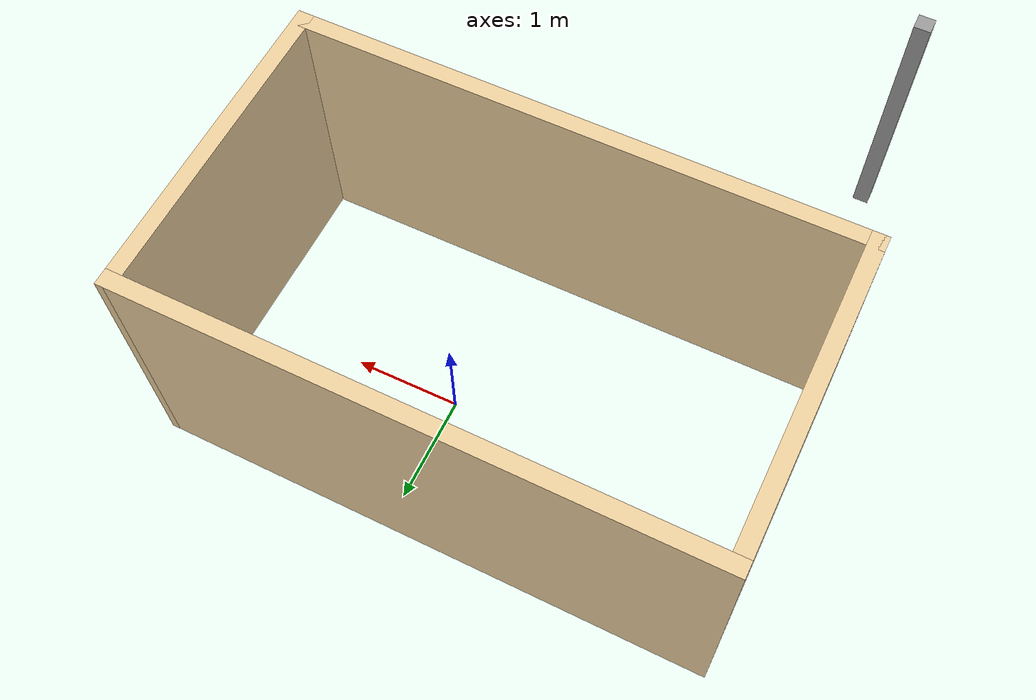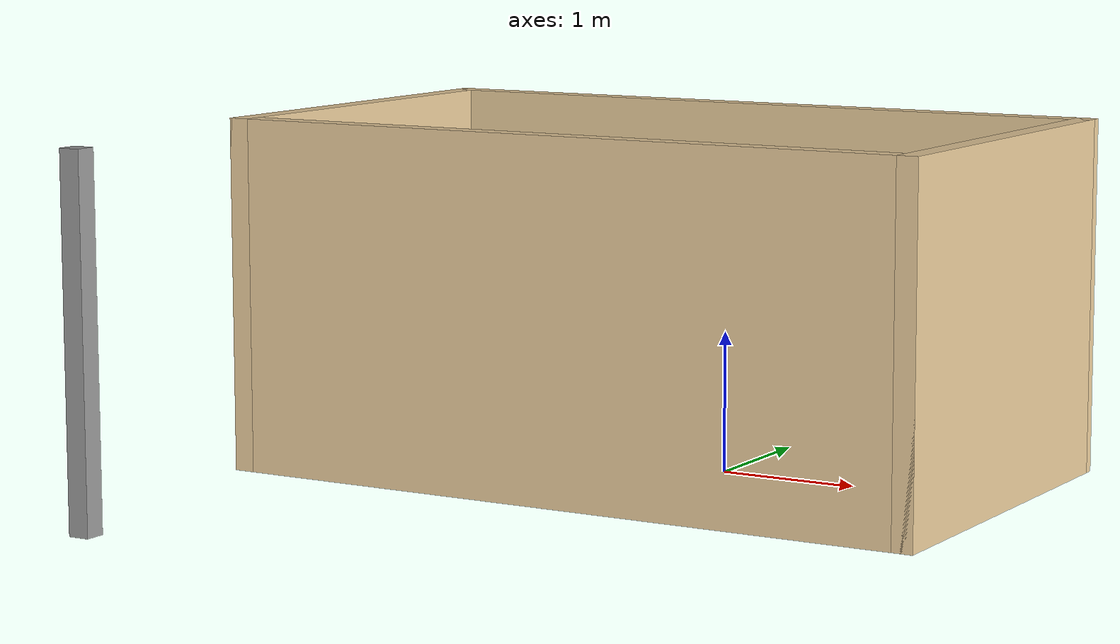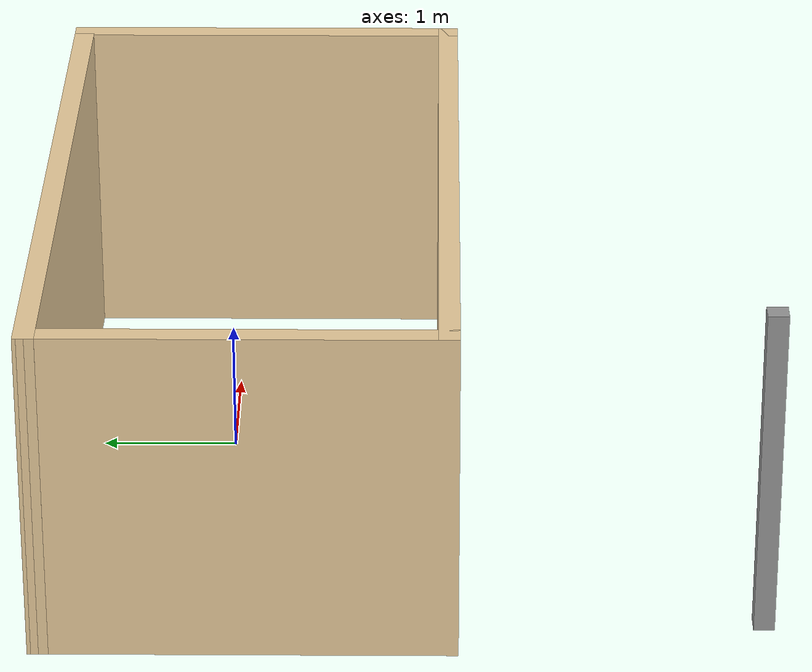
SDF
<?xml version='1.0'?>
<sdf version='1.7'>
  <model name='walker_world'>
    <pose>-0.398093 -1.29893 0 0 -0 0</pose>
    <link name='Wall_10'>
      <collision name='Wall_10_Collision'>
        <geometry>
          <box>
            <size>3 0.15 2.5</size>
          </box>
        </geometry>
        <pose>0 0 1.25 0 -0 0</pose>
      </collision>
      <visual name='Wall_10_Visual'>
        <pose>0 0 1.25 0 -0 0</pose>
        <geometry>
          <box>
            <size>3 0.15 2.5</size>
          </box>
        </geometry>
        <material>
          <script>
            <uri>file://media/materials/scripts/gazebo.material</uri>
            <name>Gazebo/Grey</name>
          </script>
          <ambient>0.921569 0.807843 0.615686 1</ambient>
        </material>
        <meta>
          <layer>0</layer>
        </meta>
      </visual>
      <pose>2.55 1.10701 0 0 -0 1.5708</pose>
    </link>
    <link name='Wall_11'>
      <collision name='Wall_11_Collision'>
        <geometry>
          <box>
            <size>5.25 0.15 2.5</size>
          </box>
        </geometry>
        <pose>0 0 1.25 0 -0 0</pose>
      </collision>
      <visual name='Wall_11_Visual'>
        <pose>0 0 1.25 0 -0 0</pose>
        <geometry>
          <box>
            <size>5.25 0.15 2.5</size>
          </box>
        </geometry>
        <material>
          <script>
            <uri>file://media/materials/scripts/gazebo.material</uri>
            <name>Gazebo/Grey</name>
          </script>
          <ambient>0.921569 0.807843 0.615686 1</ambient>
        </material>
        <meta>
          <layer>0</layer>
        </meta>
      </visual>
      <pose>-0 2.54523 0 0 -0 3.13641</pose>
    </link>
    <link name='Wall_3'>
      <collision name='Wall_3_Collision'>
        <geometry>
          <box>
            <size>0.15 0.15 2.5</size>
          </box>
        </geometry>
        <pose>0 0 1.25 0 -0 0</pose>
      </collision>
      <visual name='Wall_3_Visual'>
        <pose>0 0 1.25 0 -0 0</pose>
        <geometry>
          <box>
            <size>0.15 0.15 2.5</size>
          </box>
        </geometry>
        <material>
          <script>
            <uri>file://media/materials/scripts/gazebo.material</uri>
            <name>Gazebo/Grey</name>
          </script>
          <ambient>1 1 1 1</ambient>
        </material>
        <meta>
          <layer>0</layer>
        </meta>
      </visual>
      <pose>-2.19201 -2.55885 0 0 -0 0</pose>
    </link>
    <link name='Wall_8'>
      <collision name='Wall_8_Collision'>
        <geometry>
          <box>
            <size>3 0.15 2.5</size>
          </box>
        </geometry>
        <pose>0 0 1.25 0 -0 0</pose>
      </collision>
      <visual name='Wall_8_Visual'>
        <pose>0 0 1.25 0 -0 0</pose>
        <geometry>
          <box>
            <size>3 0.15 2.5</size>
          </box>
        </geometry>
        <material>
          <script>
            <uri>file://media/materials/scripts/gazebo.material</uri>
            <name>Gazebo/Grey</name>
          </script>
          <ambient>0.921569 0.807843 0.615686 1</ambient>
        </material>
        <meta>
          <layer>0</layer>
        </meta>
      </visual>
      <pose>-2.55 1.10701 0 0 -0 -1.5708</pose>
    </link>
    <link name='Wall_9'>
      <collision name='Wall_9_Collision'>
        <geometry>
          <box>
            <size>5.25 0.15 2.5</size>
          </box>
        </geometry>
        <pose>0 0 1.25 0 -0 0</pose>
      </collision>
      <visual name='Wall_9_Visual'>
        <pose>0 0 1.25 0 -0 0</pose>
        <geometry>
          <box>
            <size>5.25 0.15 2.5</size>
          </box>
        </geometry>
        <material>
          <script>
            <uri>file://media/materials/scripts/gazebo.material</uri>
            <name>Gazebo/Grey</name>
          </script>
          <ambient>0.921569 0.807843 0.615686 1</ambient>
        </material>
        <meta>
          <layer>0</layer>
        </meta>
      </visual>
      <pose>-0 -0.31799 0 0 -0 0</pose>
    </link>
    <static>1</static>
  </model>
</sdf>
